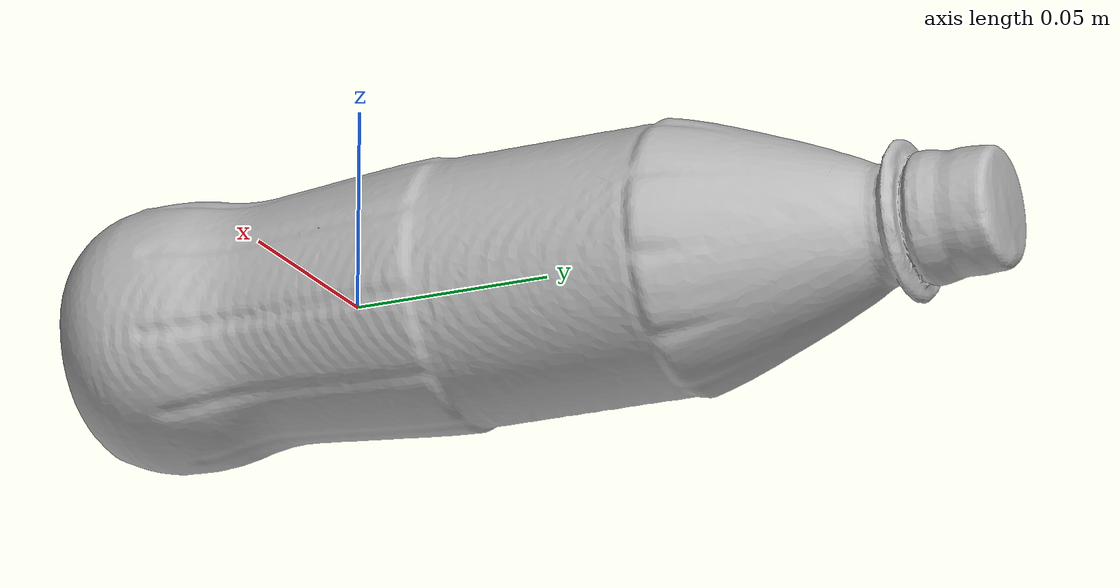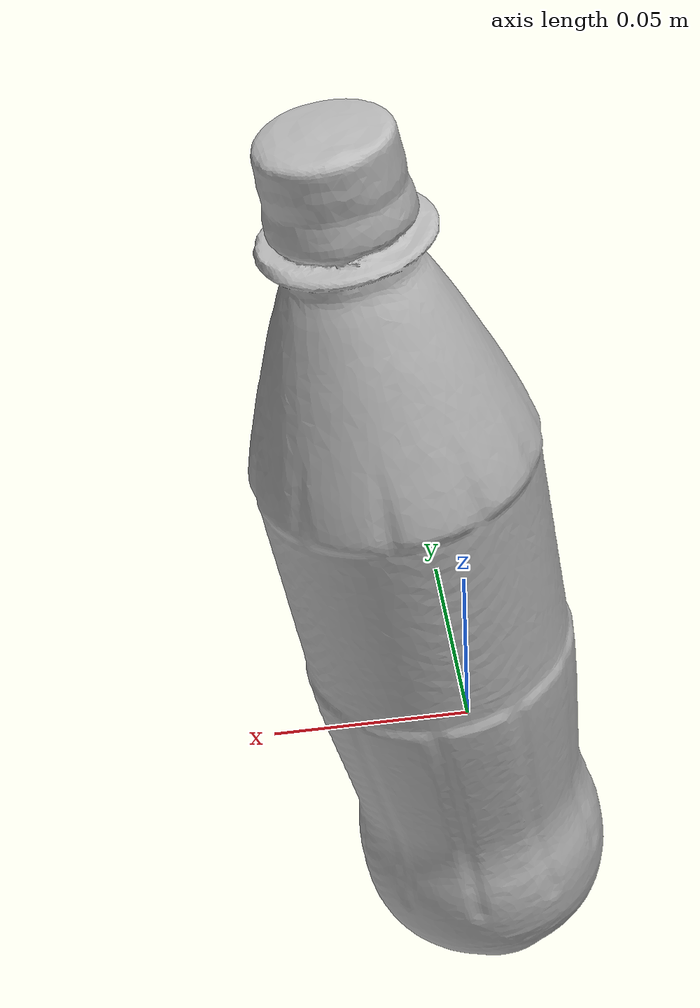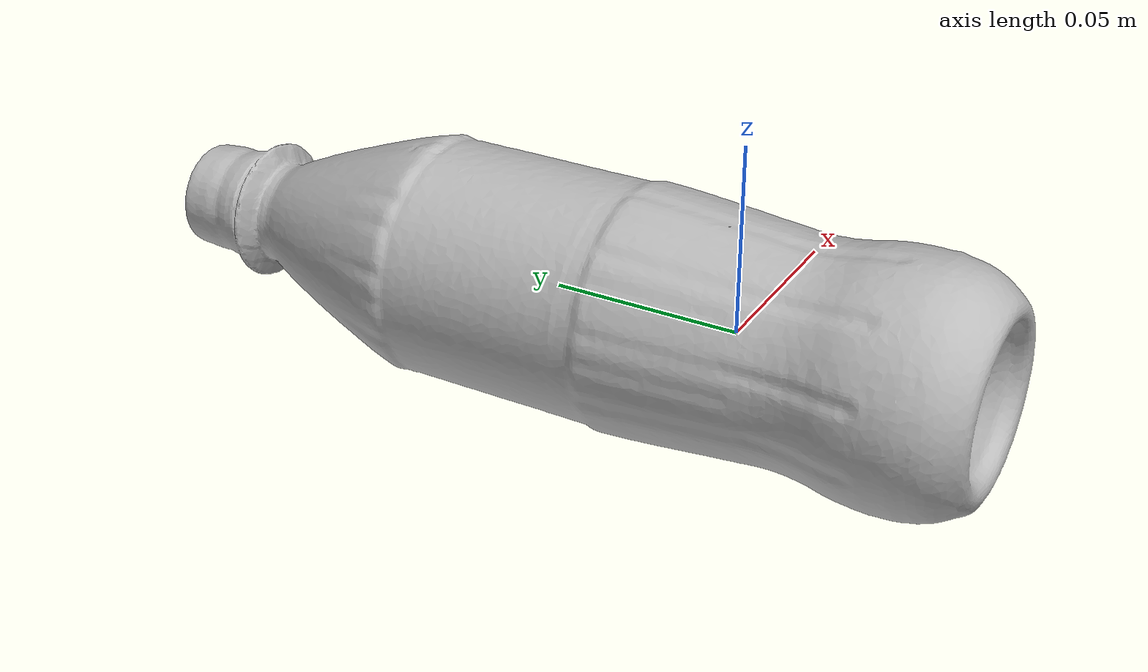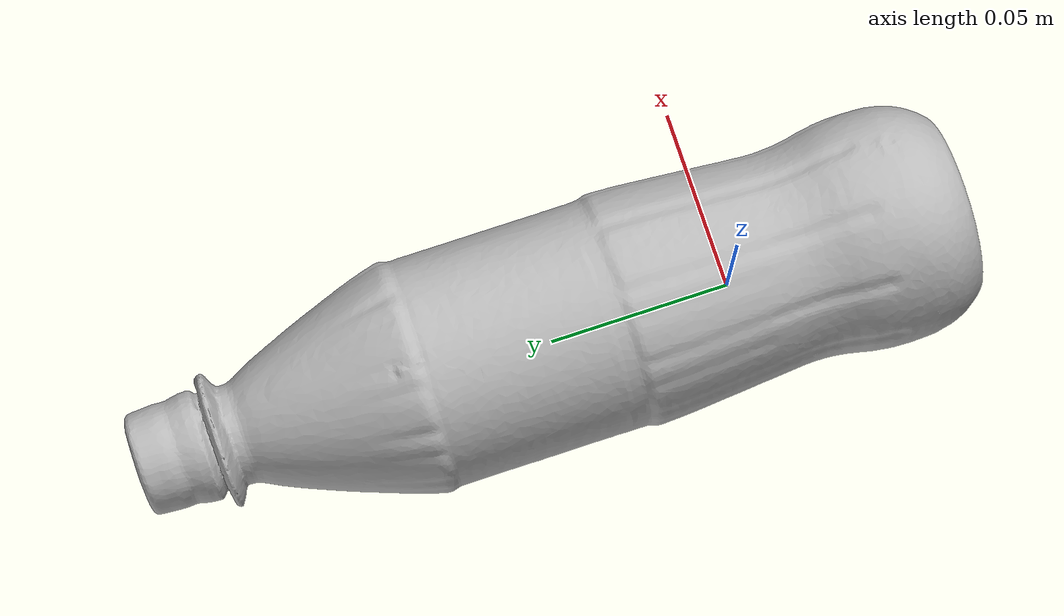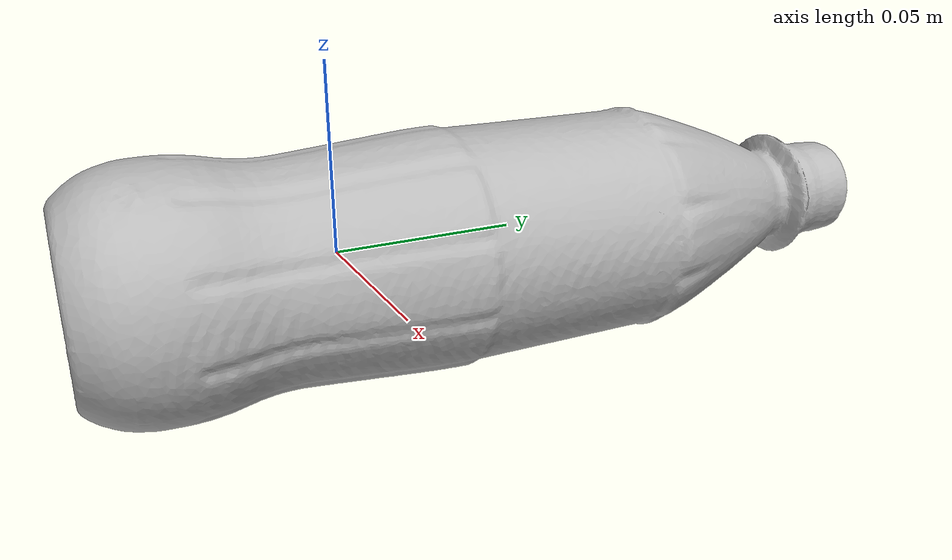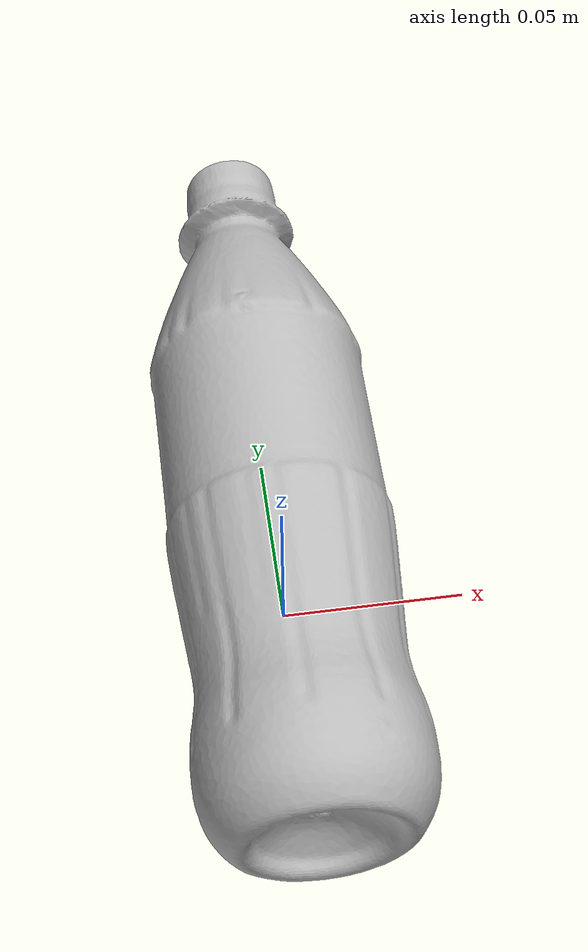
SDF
<?xml version='1.0'?>
<sdf version="1.4">
  <model name="CokePlasticSmallGrasp">
    <static>false</static>
    <link name="link">
      <inertial>
        <pose>0.002877735044204354 0.035094342364022126 -0.0021308162693654837 -1.5721639094233983 0.6637728226240749 -0.0041498801875598</pose>
        <mass>0.06493740272297813</mass>
        <inertia>
          <ixx>0.00024070045476696873</ixx>
          <ixy>-3.271869596428918e-20</ixy>
          <ixz>8.034611856428024e-22</ixz>
          <iyy>0.00024061995111257205</iyy>
          <iyz>-2.94426253731891e-21</iyz>
          <izz>3.160755744701094e-05</izz>
        </inertia>
      </inertial>
      <collision name="collision">
        <geometry>
          <mesh>
            <!-- Use a downsampled mesh for collisions -->
            <uri>model:///CokePlasticSmallGrasp/CokePlasticSmallGrasp_250_collision.obj</uri>
	        </mesh>
        </geometry>
        <surface>
      </surface>
      </collision>
      <visual name="visual">
        <geometry>
          <mesh>
            <uri>model:///CokePlasticSmallGrasp/CokePlasticSmallGrasp_25k_tex.obj</uri>
	        </mesh>
        </geometry>
        <material>
          <script>
            <uri>model:///CokePlasticSmallGrasp/CokePlasticSmallGrasp.material</uri>
            <name>CokePlasticSmallGrasp</name>
          </script>
        </material>
      </visual>
    </link>
  </model>
</sdf>
